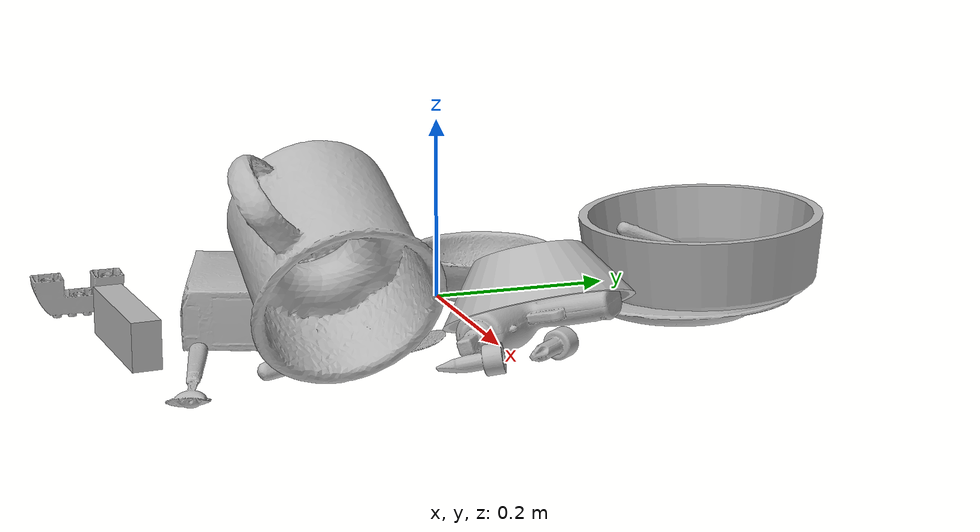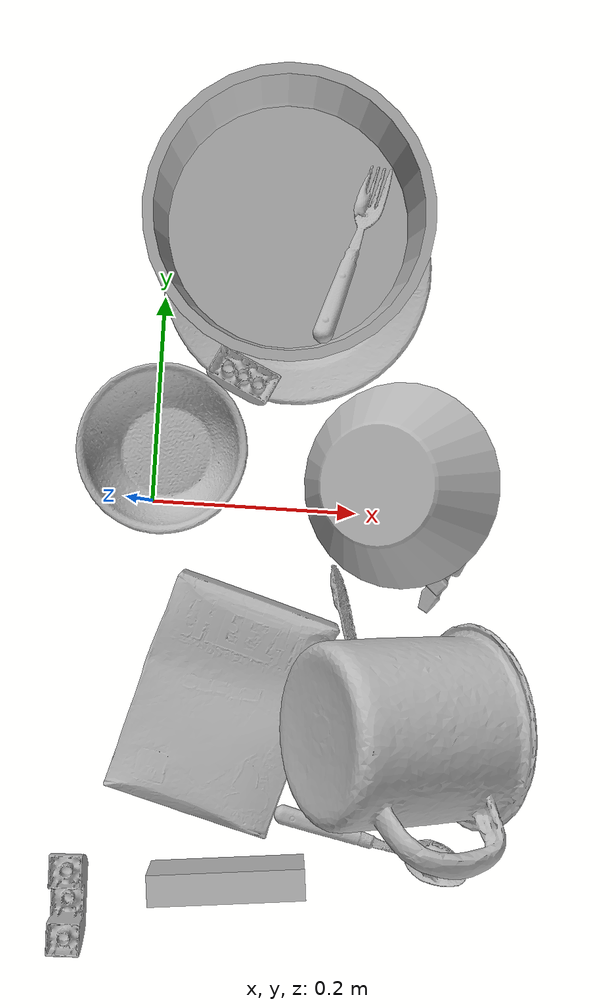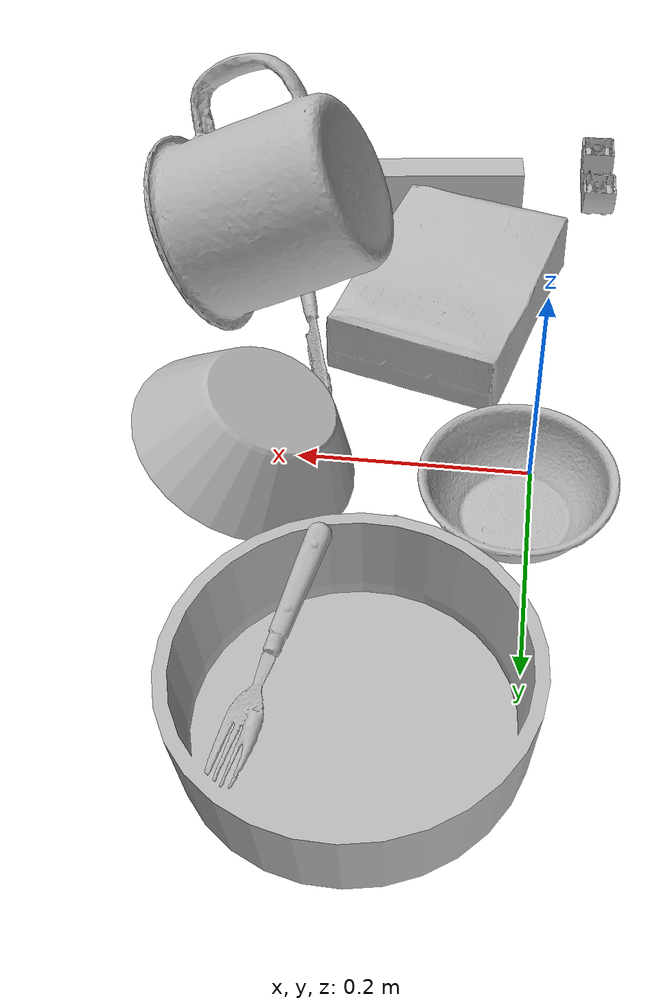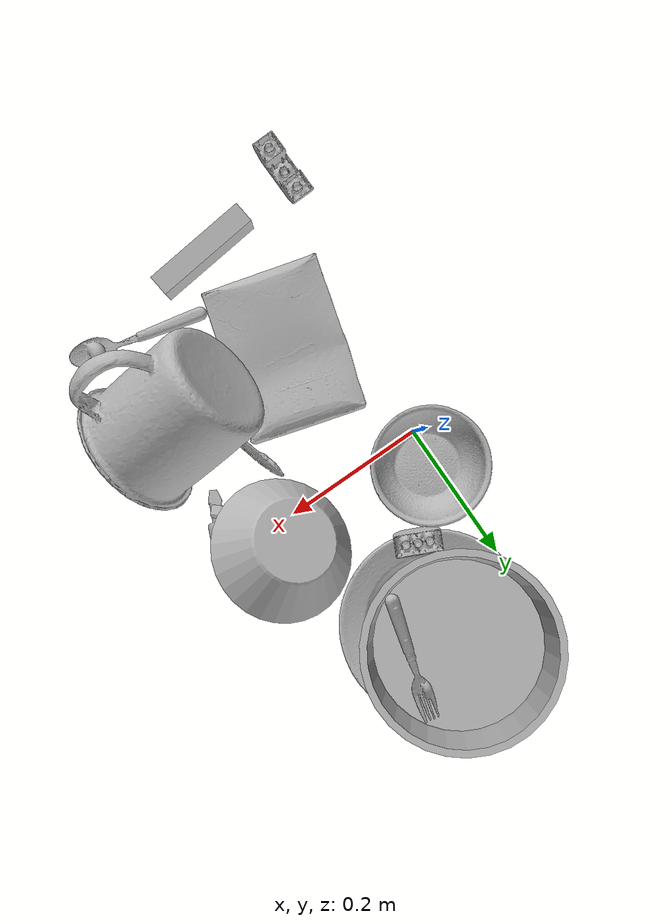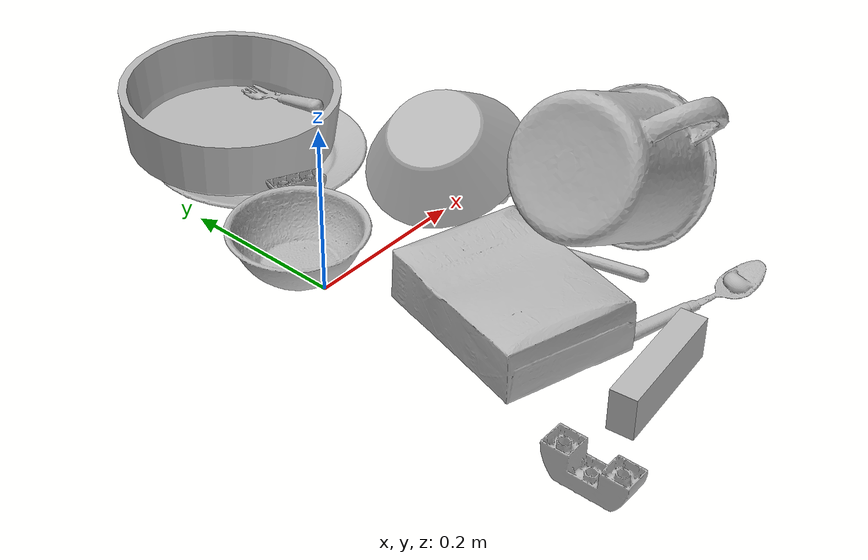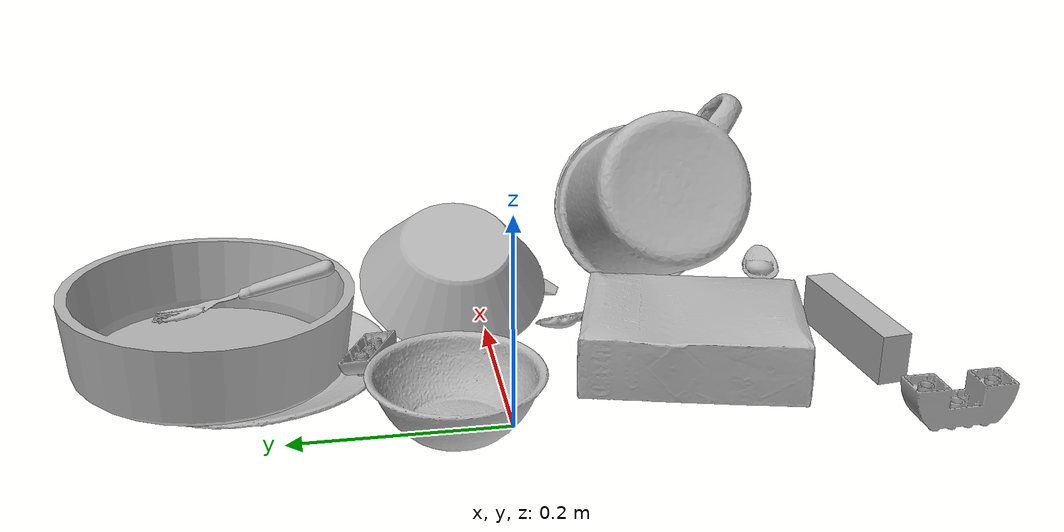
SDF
<sdf version="1.4">
  <world name="default">
    <light name="light1" type="point">
      <pose>0 0 1 0 0 0</pose>
      <diffuse>3 3 3 1</diffuse>
      <specular>3 3 3 1</specular>
    </light>
    <light name="light2" type="point">
      <pose>0 0.5 2 0 0 0</pose>
      <diffuse>1 1 1 1</diffuse>
      <specular>1 1 1 1</specular>
    </light>
    <light name="light3" type="point">
      <pose>0 0.5 2 0 0 0</pose>
      <diffuse>3 3 3 1</diffuse>
      <specular>3 3 3 1</specular>
    </light>
    <scene>
      <ambient>0.7 0.7 0.7</ambient>
    </scene>
    <model name="plate1">
      <link name="link_plate1">
        <collision name="default">
          <geometry>
            <mesh>
              <uri>model://plate/collision_meshes/collision.obj</uri>
              <scale>1.0 1.0 1.0</scale>
            </mesh>
          </geometry>
          <surface>
            <friction>
              <ode>
                <mu>0.5</mu>
                <mu2>0.5</mu2>
              </ode>
            </friction>
          <contact>
        <ode>
            <max_vel>0</max_vel>
            <min_depth>0.0001</min_depth>
            <kp>1e8</kp>
        </ode>
    </contact></surface>
        </collision>
        <visual name="default">
          <geometry>
            <mesh>
              <uri>model://plate/visual_meshes/visual.dae</uri>
              <scale>1.0 1.0 1.0</scale>
            </mesh>
          </geometry>
        </visual>
        <inertial>
          <mass>0.2627958059310913</mass>
          <pose>-0.0006044646725058556 0.00027825895813293755 -0.0010561998933553696 0.0022187866930069794 -0.0032254842153956703 0.4526099982878722</pose>
          <inertia>
            <ixx>0.0012293643</ixx>
            <iyy>0.0012176059</iyy>
            <izz>0.0024044532</izz>
            <ixy>0</ixy>
            <ixz>0</ixz>
            <iyz>0</iyz>
          </inertia>
        </inertial>
      </link>
      <pose>0.12599603831768036 0.23150987923145294 0.013738341629505157 -2.106608642265288e-05 -6.93748798715762e-05 0.7801196722857033</pose>
    </model>
    <model name="plate2">
      <link name="link_plate2">
        <collision name="default">
          <geometry>
            <mesh>
              <uri>model://pan_tefal/collision_meshes/collision.obj</uri>
              <scale>1.0 1.0 1.0</scale>
            </mesh>
          </geometry>
          <surface>
            <friction>
              <ode>
                <mu>0.5</mu>
                <mu2>0.5</mu2>
              </ode>
            </friction>
          <contact>
        <ode>
            <max_vel>0</max_vel>
            <min_depth>0.0001</min_depth>
            <kp>1e8</kp>
        </ode>
    </contact></surface>
        </collision>
        <visual name="default">
          <geometry>
            <mesh>
              <uri>model://pan_tefal/visual_meshes/visual.dae</uri>
              <scale>1.0 1.0 1.0</scale>
            </mesh>
          </geometry>
        </visual>
        <inertial>
          <mass>1.5012701749801636</mass>
          <pose>-0.00018001999706029892 3.279017983004451e-05 -0.00851493701338768 0.0008190300793188327 -0.0003301349064117064 -0.3318640955526003</pose>
          <inertia>
            <ixx>0.010363197</ixx>
            <iyy>0.010430007</iyy>
            <izz>0.019076647</izz>
            <ixy>0</ixy>
            <ixz>0</ixz>
            <iyz>0</iyz>
          </inertia>
        </inertial>
      </link>
      <pose>0.11607523262500763 0.2664681077003479 0.06416729837656021 0.050431980807891366 0.026280481466630378 -0.2458581095854762</pose>
    </model>
    <model name="bowl1">
      <link name="link_bowl1">
        <collision name="default">
          <geometry>
            <mesh>
              <uri>model://bowl_a/collision_meshes/collision.obj</uri>
              <scale>1.0 1.0 1.0</scale>
            </mesh>
          </geometry>
          <surface>
            <friction>
              <ode>
                <mu>0.5</mu>
                <mu2>0.5</mu2>
              </ode>
            </friction>
          <contact>
        <ode>
            <max_vel>0</max_vel>
            <min_depth>0.0001</min_depth>
            <kp>1e8</kp>
        </ode>
    </contact></surface>
        </collision>
        <visual name="default">
          <geometry>
            <mesh>
              <uri>model://bowl_a/visual_meshes/visual.dae</uri>
              <scale>1.0 1.0 1.0</scale>
            </mesh>
          </geometry>
        </visual>
        <inertial>
          <mass>0.25230005383491516</mass>
          <pose>0.0002786753175314516 4.731153603643179e-05 -0.001376529224216938 -0.000980537182568925 -0.0010938202432478224 -0.19123453155183487</pose>
          <inertia>
            <ixx>0.00071831</ixx>
            <iyy>0.0007227198</iyy>
            <izz>0.0012775414</izz>
            <ixy>0</ixy>
            <ixz>0</ixz>
            <iyz>0</iyz>
          </inertia>
        </inertial>
      </link>
      <pose>0.22326241433620453 0.02759455516934395 0.06928812712430954 -2.703906540247432 -0.079025217775954 -1.293052444459249</pose>
    </model>
    <model name="bowl2">
      <link name="link_bowl2">
        <collision name="default">
          <geometry>
            <mesh>
              <uri>model://bowl/collision_meshes/collision.obj</uri>
              <scale>1.0 1.0 1.0</scale>
            </mesh>
          </geometry>
          <surface>
            <friction>
              <ode>
                <mu>0.5</mu>
                <mu2>0.5</mu2>
              </ode>
            </friction>
          <contact>
        <ode>
            <max_vel>0</max_vel>
            <min_depth>0.0001</min_depth>
            <kp>1e8</kp>
        </ode>
    </contact></surface>
        </collision>
        <visual name="default">
          <geometry>
            <mesh>
              <uri>model://bowl/visual_meshes/visual.dae</uri>
              <scale>1.0 1.0 1.0</scale>
            </mesh>
          </geometry>
        </visual>
        <inertial>
          <mass>0.09131127595901489</mass>
          <pose>0.00020444947585929185 -0.0010302107548341155 -0.0008042654953896999 -0.01576413996306862 0.014546728377416086 0.7140363947853973</pose>
          <inertia>
            <ixx>0.00020974927</ixx>
            <iyy>0.00020506265</iyy>
            <izz>0.00035287044</izz>
            <ixy>0</ixy>
            <ixz>0</ixz>
            <iyz>0</iyz>
          </inertia>
        </inertial>
      </link>
      <pose>0.01101015880703926 0.04934096336364746 0.02778000943362713 3.9341459146794425e-09 1.4631403682450668e-09 3.108063535366993</pose>
    </model>
    <model name="silverware1">
      <link name="link_silverware1">
        <collision name="default">
          <geometry>
            <mesh>
              <uri>model://knife/collision_meshes/collision.obj</uri>
              <scale>1.0 1.0 1.0</scale>
            </mesh>
          </geometry>
          <surface>
            <friction>
              <ode>
                <mu>0.5</mu>
                <mu2>0.5</mu2>
              </ode>
            </friction>
          <contact>
        <ode>
            <max_vel>0</max_vel>
            <min_depth>0.0001</min_depth>
            <kp>1e8</kp>
        </ode>
    </contact></surface>
        </collision>
        <visual name="default">
          <geometry>
            <mesh>
              <uri>model://knife/visual_meshes/visual.dae</uri>
              <scale>1.0 1.0 1.0</scale>
            </mesh>
          </geometry>
        </visual>
        <inertial>
          <mass>0.033491987735033035</mass>
          <pose>-0.023785259574651718 0.00152751209679991 5.062024501967244e-05 0.07305195921562309 0.017248415702697233 -0.007409822782391368</pose>
          <inertia>
            <ixx>9.5063825e-07</ixx>
            <iyy>0.00012867076</iyy>
            <izz>0.00012897696</izz>
            <ixy>0</ixy>
            <ixz>0</ixz>
            <iyz>0</iyz>
          </inertia>
        </inertial>
      </link>
      <pose>0.21048977971076965 -0.15391242504119873 0.00841081328690052 0.9011678039005819 -0.010232663533479307 1.835166227386932</pose>
    </model>
    <model name="box1">
      <link name="link_box1">
        <collision name="default">
          <geometry>
            <mesh>
              <uri>model://cracker_box/collision_meshes/collision.obj</uri>
              <scale>1.0 1.0 1.0</scale>
            </mesh>
          </geometry>
          <surface>
            <friction>
              <ode>
                <mu>0.5</mu>
                <mu2>0.5</mu2>
              </ode>
            </friction>
          <contact>
        <ode>
            <max_vel>0</max_vel>
            <min_depth>0.0001</min_depth>
            <kp>1e8</kp>
        </ode>
    </contact></surface>
        </collision>
        <visual name="default">
          <geometry>
            <mesh>
              <uri>model://cracker_box/visual_meshes/visual.dae</uri>
              <scale>1.0 1.0 1.0</scale>
            </mesh>
          </geometry>
        </visual>
        <inertial>
          <mass>3.401942253112793</mass>
          <pose>0.0009464150061830878 0.00025434247800149024 -0.001702953246422112 -0.00031620765582640923 -0.011106486806186075 0.0025467954673401043</pose>
          <inertia>
            <ixx>0.008653021</ixx>
            <iyy>0.014287839</iyy>
            <izz>0.020390058</izz>
            <ixy>0</ixy>
            <ixz>0</ixz>
            <iyz>0</iyz>
          </inertia>
        </inertial>
      </link>
      <pose>0.08327580243349075 -0.18790213763713837 0.03638399392366409 -0.014057945568591048 -0.005017206614045424 -1.8507471675582698</pose>
    </model>
    <model name="box2">
      <link name="link_box2">
        <collision name="default">
          <geometry>
            <mesh>
              <uri>model://jenga/collision_meshes/collision.obj</uri>
              <scale>1.0 1.0 1.0</scale>
            </mesh>
          </geometry>
          <surface>
            <friction>
              <ode>
                <mu>0.5</mu>
                <mu2>0.5</mu2>
              </ode>
            </friction>
          <contact>
        <ode>
            <max_vel>0</max_vel>
            <min_depth>0.0001</min_depth>
            <kp>1e8</kp>
        </ode>
    </contact></surface>
        </collision>
        <visual name="default">
          <geometry>
            <mesh>
              <uri>model://jenga/visual_meshes/visual.dae</uri>
              <scale>1.0 1.0 1.0</scale>
            </mesh>
          </geometry>
        </visual>
        <inertial>
          <mass>0.15917322039604187</mass>
          <pose>-2.502856091268768e-07 -0.00010250010382151231 -4.0923405322246253e-05 0.0 -7.34215461761844e-07 0.0</pose>
          <inertia>
            <ixx>4.4047094e-05</ixx>
            <iyy>0.0002984619</iyy>
            <izz>0.00031863348</izz>
            <ixy>0</ixy>
            <ixz>0</ixz>
            <iyz>0</iyz>
          </inertia>
        </inertial>
      </link>
      <pose>0.09784871339797974 -0.3601502478122711 0.024701939895749092 1.5774983842460395 -2.160276891067455e-07 -3.0340247519131194</pose>
    </model>
    <model name="cup1">
      <link name="link_cup1">
        <collision name="default">
          <geometry>
            <mesh>
              <uri>model://mug/collision_meshes/collision.obj</uri>
              <scale>2.0 2.0 2.0</scale>
            </mesh>
          </geometry>
          <surface>
            <friction>
              <ode>
                <mu>0.5</mu>
                <mu2>0.5</mu2>
              </ode>
            </friction>
          <contact>
        <ode>
            <max_vel>0</max_vel>
            <min_depth>0.0001</min_depth>
            <kp>1e8</kp>
        </ode>
    </contact></surface>
        </collision>
        <visual name="default">
          <geometry>
            <mesh>
              <uri>model://mug/visual_meshes/visual.dae</uri>
              <scale>2.0 2.0 2.0</scale>
            </mesh>
          </geometry>
        </visual>
        <inertial>
          <mass>1.8939067125320435</mass>
          <pose>0.019143342971801758 0.0016286505851894617 -0.02189466543495655 -0.12983139039190478 0.08737723243087561 0.05507286357129759</pose>
          <inertia>
            <ixx>0.0075250226</ixx>
            <iyy>0.008405008</iyy>
            <izz>0.009720505</izz>
            <ixy>0</ixy>
            <ixz>0</ixz>
            <iyz>0</iyz>
          </inertia>
        </inertial>
      </link>
      <pose>0.2493458241224289 -0.20608830451965332 0.1344606578350067 2.203077856735657 0.7281177466001152 2.0612328278300334</pose>
    </model>
    <model name="silverware2">
      <link name="link_silverware2">
        <collision name="default">
          <geometry>
            <mesh>
              <uri>model://fork/collision_meshes/collision.obj</uri>
              <scale>1.0 1.0 1.0</scale>
            </mesh>
          </geometry>
          <surface>
            <friction>
              <ode>
                <mu>0.5</mu>
                <mu2>0.5</mu2>
              </ode>
            </friction>
          <contact>
        <ode>
            <max_vel>0</max_vel>
            <min_depth>0.0001</min_depth>
            <kp>1e8</kp>
        </ode>
    </contact></surface>
        </collision>
        <visual name="default">
          <geometry>
            <mesh>
              <uri>model://fork/visual_meshes/visual.dae</uri>
              <scale>1.0 1.0 1.0</scale>
            </mesh>
          </geometry>
        </visual>
        <inertial>
          <mass>0.01107261423021555</mass>
          <pose>-0.02957005240023136 0.00046588238910771906 0.0003218861820641905 -0.01355183639158028 -0.010977839693189282 0.014453902572364752</pose>
          <inertia>
            <ixx>3.8815773e-07</ixx>
            <iyy>2.8907412e-05</iyy>
            <izz>2.9081024e-05</izz>
            <ixy>0</ixy>
            <ixz>0</ixz>
            <iyz>0</iyz>
          </inertia>
        </inertial>
      </link>
      <pose>0.17675533890724182 0.2398359179496765 0.0671841949224472 -0.04881158506695804 0.36570248860295945 1.2912095988187047</pose>
    </model>
    <model name="silverware3">
      <link name="link_silverware3">
        <collision name="default">
          <geometry>
            <mesh>
              <uri>model://spoon/collision_meshes/collision.obj</uri>
              <scale>1.0 1.0 1.0</scale>
            </mesh>
          </geometry>
          <surface>
            <friction>
              <ode>
                <mu>0.5</mu>
                <mu2>0.5</mu2>
              </ode>
            </friction>
          <contact>
        <ode>
            <max_vel>0</max_vel>
            <min_depth>0.0001</min_depth>
            <kp>1e8</kp>
        </ode>
    </contact></surface>
        </collision>
        <visual name="default">
          <geometry>
            <mesh>
              <uri>model://spoon/visual_meshes/visual.dae</uri>
              <scale>1.0 1.0 1.0</scale>
            </mesh>
          </geometry>
        </visual>
        <inertial>
          <mass>0.03720218688249588</mass>
          <pose>-0.005526323337107897 -0.00160341733135283 -0.0007271655485965312 0.035216710753312216 -0.03906584126265578 0.006150608185168733</pose>
          <inertia>
            <ixx>2.0692462e-06</ixx>
            <iyy>0.00014155307</iyy>
            <izz>0.00014257352</izz>
            <ixy>0</ixy>
            <ixz>0</ixz>
            <iyz>0</iyz>
          </inertia>
        </inertial>
      </link>
      <pose>0.23577147722244263 -0.3177862763404846 0.00838526152074337 0.006729143490437971 0.026893031960553402 -0.24952588927768365</pose>
    </model>
    <model name="toy1">
      <link name="link_toy1">
        <collision name="default">
          <geometry>
            <mesh>
              <uri>model://e_toy_airplane/collision_meshes/collision.obj</uri>
              <scale>1.0 1.0 1.0</scale>
            </mesh>
          </geometry>
          <surface>
            <friction>
              <ode>
                <mu>0.5</mu>
                <mu2>0.5</mu2>
              </ode>
            </friction>
          <contact>
        <ode>
            <max_vel>0</max_vel>
            <min_depth>0.0001</min_depth>
            <kp>1e8</kp>
        </ode>
    </contact></surface>
        </collision>
        <visual name="default">
          <geometry>
            <mesh>
              <uri>model://e_toy_airplane/visual_meshes/visual.dae</uri>
              <scale>1.0 1.0 1.0</scale>
            </mesh>
          </geometry>
        </visual>
        <inertial>
          <mass>0.02491888962686062</mass>
          <pose>0.00011740486661437899 -2.248287455586251e-05 -0.011187204159796238 0.00551850201937057 0.009228289896812953 0.1504152046419029</pose>
          <inertia>
            <ixx>7.60553e-06</ixx>
            <iyy>7.52773e-06</iyy>
            <izz>2.2857607e-06</izz>
            <ixy>0</ixy>
            <ixz>0</ixz>
            <iyz>0</iyz>
          </inertia>
        </inertial>
      </link>
      <pose>0.2837781608104706 -0.06048920005559921 0.011940785683691502 2.046641196637454 1.1315997908586666 0.03370364866045438</pose>
    </model>
    <model name="toy2">
      <link name="link_toy2">
        <collision name="default">
          <geometry>
            <mesh>
              <uri>model://e_lego_duplo/collision_meshes/collision.obj</uri>
              <scale>1.0 1.0 1.0</scale>
            </mesh>
          </geometry>
          <surface>
            <friction>
              <ode>
                <mu>0.5</mu>
                <mu2>0.5</mu2>
              </ode>
            </friction>
          <contact>
        <ode>
            <max_vel>0</max_vel>
            <min_depth>0.0001</min_depth>
            <kp>1e8</kp>
        </ode>
    </contact></surface>
        </collision>
        <visual name="default">
          <geometry>
            <mesh>
              <uri>model://e_lego_duplo/visual_meshes/visual.dae</uri>
              <scale>1.0 1.0 1.0</scale>
            </mesh>
          </geometry>
        </visual>
        <inertial>
          <mass>0.08635181933641434</mass>
          <pose>0.00032560451654717326 0.0002348542184336111 0.0019521444337442517 -0.022567902749969417 -6.824781923482006e-05 -0.00762515629770681</pose>
          <inertia>
            <ixx>1.8007207e-05</ixx>
            <iyy>7.390619e-05</iyy>
            <izz>7.1969785e-05</izz>
            <ixy>0</ixy>
            <ixz>0</ixz>
            <iyz>0</iyz>
          </inertia>
        </inertial>
      </link>
      <pose>-0.054643068462610245 -0.3894332945346832 0.02175537683069706 -3.1251827160799963 -0.0024323803953417147 1.590525800772739</pose>
    </model>
    <model name="toy3">
      <link name="link_toy3">
        <collision name="default">
          <geometry>
            <mesh>
              <uri>model://d_toy_airplane/collision_meshes/collision.obj</uri>
              <scale>1.0 1.0 1.0</scale>
            </mesh>
          </geometry>
          <surface>
            <friction>
              <ode>
                <mu>0.5</mu>
                <mu2>0.5</mu2>
              </ode>
            </friction>
          <contact>
        <ode>
            <max_vel>0</max_vel>
            <min_depth>0.0001</min_depth>
            <kp>1e8</kp>
        </ode>
    </contact></surface>
        </collision>
        <visual name="default">
          <geometry>
            <mesh>
              <uri>model://d_toy_airplane/visual_meshes/visual.dae</uri>
              <scale>1.0 1.0 1.0</scale>
            </mesh>
          </geometry>
        </visual>
        <inertial>
          <mass>0.01398532185703516</mass>
          <pose>9.410311031388119e-05 -5.809316644445062e-05 -0.011728093959391117 0.00026700916858413164 0.004678987951971881 0.5194708538811167</pose>
          <inertia>
            <ixx>4.1925277e-06</ixx>
            <iyy>4.1956896e-06</iyy>
            <izz>1.2657512e-06</izz>
            <ixy>0</ixy>
            <ixz>0</ixz>
            <iyz>0</iyz>
          </inertia>
        </inertial>
      </link>
      <pose>0.27647680044174194 0.023908590897917747 0.0156937874853611 1.5581968663997992 0.7954289767236558 0.6661939622244881</pose>
    </model>
    <model name="toy4">
      <link name="link_toy4">
        <collision name="default">
          <geometry>
            <mesh>
              <uri>model://b_toy_airplane/collision_meshes/collision.obj</uri>
              <scale>1.0 1.0 1.0</scale>
            </mesh>
          </geometry>
          <surface>
            <friction>
              <ode>
                <mu>0.5</mu>
                <mu2>0.5</mu2>
              </ode>
            </friction>
          <contact>
        <ode>
            <max_vel>0</max_vel>
            <min_depth>0.0001</min_depth>
            <kp>1e8</kp>
        </ode>
    </contact></surface>
        </collision>
        <visual name="default">
          <geometry>
            <mesh>
              <uri>model://b_toy_airplane/visual_meshes/visual.dae</uri>
              <scale>1.0 1.0 1.0</scale>
            </mesh>
          </geometry>
        </visual>
        <inertial>
          <mass>0.39888885617256165</mass>
          <pose>0.00508136348798871 0.0040155863389372826 0.009543065913021564 -0.04001810285123905 -0.040221831504284974 -0.560150355465512</pose>
          <inertia>
            <ixx>0.00074054446</ixx>
            <iyy>0.00029600295</iyy>
            <izz>0.00092131115</izz>
            <ixy>0</ixy>
            <ixz>0</ixz>
            <iyz>0</iyz>
          </inertia>
        </inertial>
      </link>
      <pose>0.23232366144657135 0.015898050740361214 0.045499883592128754 -2.823663653616572 -0.015083461271817518 -0.755024160155915</pose>
    </model>
    <model name="toy5">
      <link name="link_toy5">
        <collision name="default">
          <geometry>
            <mesh>
              <uri>model://a_lego_duplo/collision_meshes/collision.obj</uri>
              <scale>1.0 1.0 1.0</scale>
            </mesh>
          </geometry>
          <surface>
            <friction>
              <ode>
                <mu>0.5</mu>
                <mu2>0.5</mu2>
              </ode>
            </friction>
          <contact>
        <ode>
            <max_vel>0</max_vel>
            <min_depth>0.0001</min_depth>
            <kp>1e8</kp>
        </ode>
    </contact></surface>
        </collision>
        <visual name="default">
          <geometry>
            <mesh>
              <uri>model://a_lego_duplo/visual_meshes/visual.dae</uri>
              <scale>1.0 1.0 1.0</scale>
            </mesh>
          </geometry>
        </visual>
        <inertial>
          <mass>0.014756478369235992</mass>
          <pose>-0.00011337623436702415 0.00018517495482228696 0.00036926049506291747 -0.01411700810413075 -0.00012565743579302476 6.142605902116464e-05</pose>
          <inertia>
            <ixx>1.8918981e-06</ixx>
            <iyy>4.238266e-06</iyy>
            <izz>5.250033e-06</izz>
            <ixy>0</ixy>
            <ixz>0</ixz>
            <iyz>0</iyz>
          </inertia>
        </inertial>
      </link>
      <pose>0.08207325637340546 0.12214235961437225 0.036594852805137634 2.8993121762280456 -0.0022871728961983404 -0.44238105632121316</pose>
    </model>
  <physics type="ode">
      <max_contacts>50</max_contacts>
      <ode>
        <solver>
          <type>quick</type>
          <iters>75</iters>
        </solver>
        <constraints>
          <contact_max_correcting_vel>0</contact_max_correcting_vel>
          <contact_surface_layer>0</contact_surface_layer>
        </constraints>
      </ode>
    </physics></world>
</sdf>
